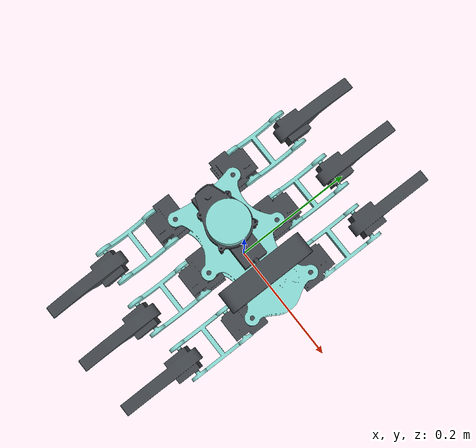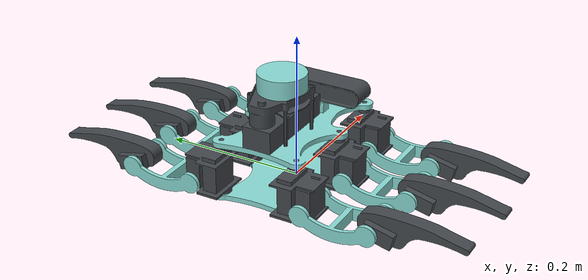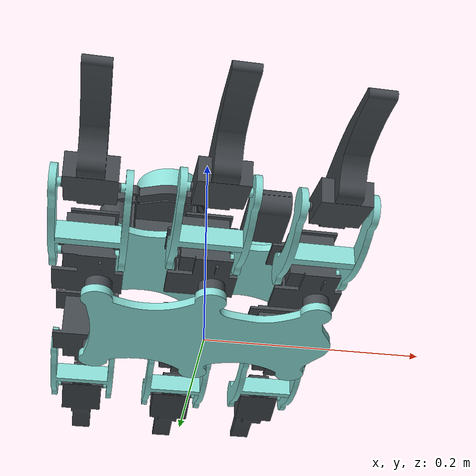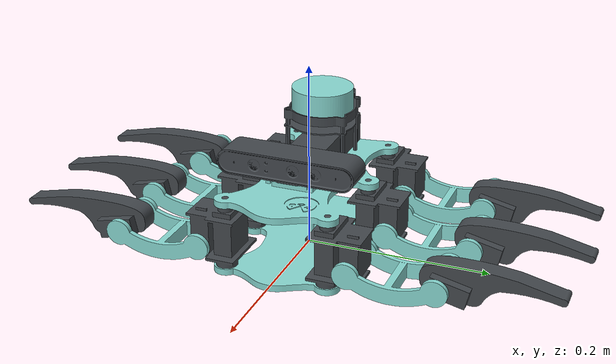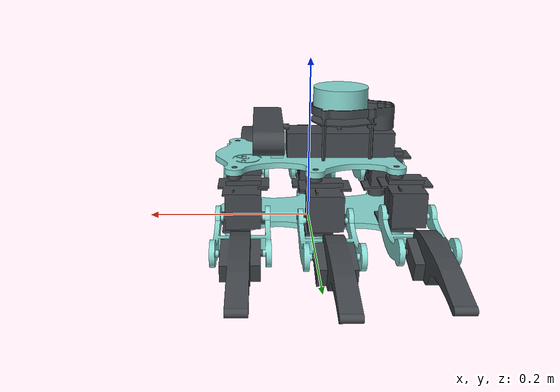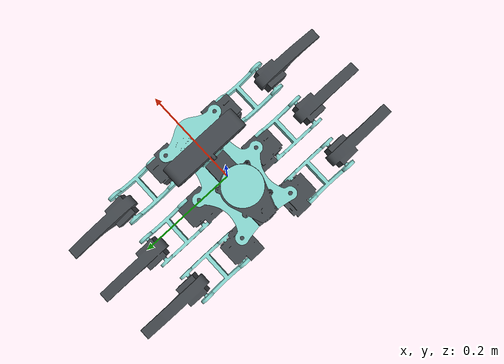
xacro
<?xml version="1.0"?>
<robot name="tiffany" xmlns:xacro="http://www.ros.org/wiki/xacro">

  <xacro:arg name="camera" default="true"/>
  <xacro:arg name="lidar" default="true"/>

  <xacro:property name="pkg"          value="hexapod_ws"/>
  <xacro:property name="effort"       value="10"/>
  <xacro:property name="velocity"     value="10"/>
  <xacro:property name="joint_lower"  value="-3.14159"/>
  <xacro:property name="joint_upper"  value="3.14159"/>

  <ros2_control name="tiffany_ros2_control" type="system">
    <hardware>
      <plugin>gz_ros2_control/GazeboSimSystem</plugin>
    </hardware>

    <joint name="coxa1">
      <command_interface name="position"/>
      <state_interface name="position"/>
      <state_interface name="velocity"/>
    </joint>
    <joint name="femur1">
      <command_interface name="position"/>
      <state_interface name="position"/>
      <state_interface name="velocity"/>
    </joint>
    <joint name="tibia1">
      <command_interface name="position"/>
      <state_interface name="position"/>
      <state_interface name="velocity"/>
    </joint>

    <joint name="coxa2">
      <command_interface name="position"/>
      <state_interface name="position"/>
      <state_interface name="velocity"/>
    </joint>
    <joint name="femur2">
      <command_interface name="position"/>
      <state_interface name="position"/>
      <state_interface name="velocity"/>
    </joint>
    <joint name="tibia2">
      <command_interface name="position"/>
      <state_interface name="position"/>
      <state_interface name="velocity"/>
    </joint>

    <joint name="coxa3">
      <command_interface name="position"/>
      <state_interface name="position"/>
      <state_interface name="velocity"/>
    </joint>
    <joint name="femur3">
      <command_interface name="position"/>
      <state_interface name="position"/>
      <state_interface name="velocity"/>
    </joint>
    <joint name="tibia3">
      <command_interface name="position"/>
      <state_interface name="position"/>
      <state_interface name="velocity"/>
    </joint>

    <joint name="coxa4">
      <command_interface name="position"/>
      <state_interface name="position"/>
      <state_interface name="velocity"/>
    </joint>
    <joint name="femur4">
      <command_interface name="position"/>
      <state_interface name="position"/>
      <state_interface name="velocity"/>
    </joint>
    <joint name="tibia4">
      <command_interface name="position"/>
      <state_interface name="position"/>
      <state_interface name="velocity"/>
    </joint>

    <joint name="coxa5">
      <command_interface name="position"/>
      <state_interface name="position"/>
      <state_interface name="velocity"/>
    </joint>
    <joint name="femur5">
      <command_interface name="position"/>
      <state_interface name="position"/>
      <state_interface name="velocity"/>
    </joint>
    <joint name="tibia5">
      <command_interface name="position"/>
      <state_interface name="position"/>
      <state_interface name="velocity"/>
    </joint>

    <joint name="coxa6">
      <command_interface name="position"/>
      <state_interface name="position"/>
      <state_interface name="velocity"/>
    </joint>
    <joint name="femur6">
      <command_interface name="position"/>
      <state_interface name="position"/>
      <state_interface name="velocity"/>
    </joint>
    <joint name="tibia6">
      <command_interface name="position"/>
      <state_interface name="position"/>
      <state_interface name="velocity"/>
    </joint>

  </ros2_control>

  <gazebo>
    <plugin filename="libgz_ros2_control-system.so" name="gz_ros2_control::GazeboSimROS2ControlPlugin">
      <parameters>$(find hexapod_ws)/config/parameters.yaml</parameters>
      <ros>
        <remapping>~/robot_description:=robot_description</remapping>
      </ros>
    </plugin>
  </gazebo>

  <gazebo>
    <plugin filename="gz-sim-odometry-publisher-system"
            name="gz::sim::systems::OdometryPublisher">
      <odom_frame>odom</odom_frame>
      <robot_base_frame>base_link</robot_base_frame>
      <odom_topic>/model/tiffany/odometry</odom_topic>
      <tf_topic>/model/tiffany/tf</tf_topic>
      <odom_publish_frequency>50</odom_publish_frequency>
      <dimensions>2</dimensions>
    </plugin>
  </gazebo>

  <link name="base_link">
    <inertial>
      <origin xyz="-0.00158727 0.000307973 0.0818293" rpy="0 0 0"/>
      <mass value="0.816237"/>
      <inertia ixx="0.00293857" ixy="5.79441e-06"  ixz="0.000191891"
               iyy="0.00475006" iyz="-8.13345e-06" izz="0.00349155"/>
    </inertial>

    <visual>
      <origin xyz="-0.00916237 0.000669937 -0.048" rpy="0 0 0"/>
      <geometry><mesh filename="package://${pkg}/description/meshes/lidar.stl"/></geometry>
      <material name="teal"><color rgba="0.537255 0.854902 0.827451 1"/></material>
    </visual>
    <collision>
      <origin xyz="-0.00916237 0.000669937 -0.048" rpy="0 0 0"/>
      <geometry><mesh filename="package://${pkg}/description/meshes/lidar.stl"/></geometry>
    </collision>

    <visual>
      <origin xyz="-0.00234127 -0.000443126 0.00690498" rpy="-0.00418892 0 0.00038394"/>
      <geometry><mesh filename="package://${pkg}/description/meshes/camera.stl"/></geometry>
      <material name="dark"><color rgba="0.262745 0.282353 0.301961 1"/></material>
    </visual>
    <collision>
      <origin xyz="-0.00234127 -0.000443126 0.00690498" rpy="-0.00418892 0 0.00038394"/>
      <geometry><mesh filename="package://${pkg}/description/meshes/camera.stl"/></geometry>
    </collision>

    <visual>
      <origin xyz="-0.00143743 0.000199567 -0.026" rpy="0 0 0"/>
      <geometry><mesh filename="package://${pkg}/description/meshes/corpo_center.stl"/></geometry>
      <material name="teal"/>
    </visual>

    <visual>
      <origin xyz="-0.00914751 -7.64622e-05 -0.00305943" rpy="0 0 0"/>
      <geometry><mesh filename="package://${pkg}/description/meshes/suportecamera.stl"/></geometry>
      <material name="teal"/>
    </visual>
    <collision>
      <origin xyz="-0.00914751 -7.64622e-05 -0.00305943" rpy="0 0 0"/>
      <geometry><mesh filename="package://${pkg}/description/meshes/suportecamera.stl"/></geometry>
    </collision>

    <visual>
      <origin xyz="-0.00916237 0.000669937 -0.028" rpy="0 0 0"/>
      <geometry><mesh filename="package://${pkg}/description/meshes/suportelidar.stl"/></geometry>
      <material name="dark"/>
    </visual>
    <collision>
      <origin xyz="-0.00916237 0.000669937 -0.028" rpy="0 0 0"/>
      <geometry><mesh filename="package://${pkg}/description/meshes/suportelidar.stl"/></geometry>
    </collision>

    <visual>
      <origin xyz="0.173258 0.000648486 0.007" rpy="0 0 0"/>
      <geometry><mesh filename="package://${pkg}/description/meshes/bateria.stl"/></geometry>
      <material name="dark"/>
    </visual>
    <collision>
      <origin xyz="0.173258 0.000648486 0.007" rpy="0 0 0"/>
      <geometry><mesh filename="package://${pkg}/description/meshes/bateria.stl"/></geometry>
    </collision>
  </link>

  <gazebo reference="base_link">
    <mu1>0.2</mu1>
    <mu2>0.2</mu2>
    <sensor name="imu" type="imu">
      <update_rate>100</update_rate>
      <topic>/imu</topic>
      <gz_frame_id>base_link</gz_frame_id>
      <imu>
        <angular_velocity>
          <x><noise type="gaussian"><mean>0.0</mean><stddev>0.001</stddev></noise></x>
          <y><noise type="gaussian"><mean>0.0</mean><stddev>0.001</stddev></noise></y>
          <z><noise type="gaussian"><mean>0.0</mean><stddev>0.001</stddev></noise></z>
        </angular_velocity>
        <linear_acceleration>
          <x><noise type="gaussian"><mean>0.0</mean><stddev>0.008</stddev></noise></x>
          <y><noise type="gaussian"><mean>0.0</mean><stddev>0.008</stddev></noise></y>
          <z><noise type="gaussian"><mean>0.0</mean><stddev>0.008</stddev></noise></z>
        </linear_acceleration>
      </imu>
      <always_on>true</always_on>
      <visualize>false</visualize>
    </sensor>
  </gazebo>

  <xacro:if value="$(arg lidar)">
    <link name="lidar">
      <inertial>
        <mass value="0.001"/>
        <inertia ixx="1e-6" ixy="0" ixz="0" iyy="1e-6" iyz="0" izz="1e-6"/>
      </inertial>
    </link>

    <joint name="lidar_joint" type="fixed">
      <parent link="base_link"/>
      <child  link="lidar"/>
      <origin xyz="-0.03674 0.000649 0.15325" rpy="0 0 0"/>
    </joint>

    <gazebo reference="lidar">
      <sensor name="lidar" type="gpu_lidar">
        <update_rate>15</update_rate>
        <topic>/scan</topic>
        <gz_frame_id>lidar</gz_frame_id>
        <lidar>
          <scan>
            <horizontal>
              <samples>720</samples>
              <resolution>1</resolution>
              <min_angle>-3.14159265</min_angle>
              <max_angle>3.14159265</max_angle>
            </horizontal>
            <vertical>
              <samples>1</samples>
              <resolution>1</resolution>
              <min_angle>0</min_angle>
              <max_angle>0</max_angle>
            </vertical>
          </scan>
          <range>
            <min>0.10</min>
            <max>12.0</max>
            <resolution>0.01</resolution>
          </range>
          <noise>
            <type>gaussian</type>
            <mean>0.0</mean>
            <stddev>0.004</stddev>
          </noise>
        </lidar>
        <always_on>true</always_on>
        <visualize>true</visualize>
      </sensor>
    </gazebo>
  </xacro:if>

  <xacro:if value="$(arg camera)">
    <link name="camera">
      <inertial>
        <mass value="0.001"/>
        <inertia ixx="1e-6" ixy="0" ixz="0" iyy="1e-6" iyz="0" izz="1e-6"/>
      </inertial>
    </link>

    <joint name="camera_joint" type="fixed">
      <parent link="base_link"/>
      <child  link="camera"/>
      <origin xyz="0.059842 -0.000288 0.11141" rpy="-0.00418892 0 0.00038394"/>
    </joint>

    <gazebo reference="camera">
      <sensor name="camera" type="rgbd_camera">
        <update_rate>15</update_rate>
        <topic>camera</topic>
        <gz_frame_id>camera</gz_frame_id>
        <camera>
          <horizontal_fov>1.3962634</horizontal_fov>
          <image>
            <width>320</width>
            <height>240</height>
            <format>R8G8B8</format>
          </image>
          <clip>
            <near>0.02</near>
            <far>50</far>
          </clip>
          <depth_camera>
            <clip>
              <near>0.1</near>
              <far>10.0</far>
            </clip>
          </depth_camera>
          <noise>
            <type>gaussian</type>
            <mean>0.0</mean>
            <stddev>0.0025</stddev>
          </noise>
        </camera>
        <always_on>true</always_on>
        <visualize>false</visualize>
      </sensor>
    </gazebo>
  </xacro:if>

  <xacro:macro name="leg" params="num parent cx cy cz c_rpy left femur_rpy">

    <link name="coxa_${num}">
      <inertial>
        <xacro:if value="${left}">
          <origin xyz="-0.00925616 0.0105337 -0.0414798" rpy="0 0 0"/>
          <inertia ixx="5.39674e-05" ixy="2.7171e-08"   ixz="1.52845e-06"
                   iyy="4.85407e-05" iyz="2.07568e-07"  izz="4.06893e-05"/>
        </xacro:if>
        <xacro:unless value="${left}">
          <origin xyz="0.00925616 0.0105337 -0.0414798" rpy="0 0 0"/>
          <inertia ixx="5.39674e-05" ixy="-2.7171e-08"  ixz="-1.52845e-06"
                   iyy="4.85407e-05" iyz="2.07568e-07"  izz="4.06893e-05"/>
        </xacro:unless>
        <mass value="0.114719"/>
      </inertial>
      <xacro:if value="${left}">
        <visual>
          <origin xyz="0.0958607 -0.104994 -0.1085" rpy="0 0 0"/>
          <geometry><mesh filename="package://${pkg}/description/meshes/coxa_left.stl"/></geometry>
          <material name="dark"/>
        </visual>
        <collision>
          <origin xyz="0.0958607 -0.104994 -0.1085" rpy="0 0 0"/>
          <geometry><mesh filename="package://${pkg}/description/meshes/coxa_left.stl"/></geometry>
        </collision>
      </xacro:if>
      <xacro:unless value="${left}">
        <visual>
          <origin xyz="-0.0958607 -0.104994 -0.1085" rpy="0 0 3.14159"/>
          <geometry><mesh filename="package://${pkg}/description/meshes/coxa_right.stl"/></geometry>
          <material name="dark"/>
        </visual>
        <collision>
          <origin xyz="-0.0958607 -0.104994 -0.1085" rpy="0 0 3.14159"/>
          <geometry><mesh filename="package://${pkg}/description/meshes/coxa_right.stl"/></geometry>
        </collision>
      </xacro:unless>
    </link>

    <joint name="coxa${num}" type="revolute">
      <origin xyz="${cx} ${cy} ${cz}" rpy="${c_rpy}"/>
      <parent link="${parent}"/>
      <child  link="coxa_${num}"/>
      <axis xyz="0 0 1"/>
      <limit effort="${effort}" velocity="${velocity}" lower="${joint_lower}" upper="${joint_upper}"/>
    </joint>

    <gazebo reference="coxa_${num}">
      <mu1>0.6</mu1><mu2>0.6</mu2>
    </gazebo>

    <link name="femur_${num}">
      <inertial>
        <xacro:if value="${left}">
          <origin xyz="-0.00643845 0.0446229 0.0220001" rpy="0 0 0"/>
          <inertia ixx="6.83684e-05" ixy="-9.8624e-08" ixz="-3.156e-09"
                   iyy="2.98626e-05" iyz="3.769e-09"   izz="4.36701e-05"/>
        </xacro:if>
        <xacro:unless value="${left}">
          <origin xyz="-0.00643859 0.0446229 -0.0220012" rpy="0 0 0"/>
          <inertia ixx="6.83682e-05" ixy="-9.8789e-08" ixz="3.106e-09"
                   iyy="2.98625e-05" iyz="-4.509e-09"  izz="4.36704e-05"/>
        </xacro:unless>
        <mass value="0.0406019"/>
      </inertial>
      <xacro:if value="${left}">
        <visual>
          <origin xyz="-0.0563378 -0.180581 -0.0838551" rpy="1.57104 1.57069 1.5708"/>
          <geometry><mesh filename="package://${pkg}/description/meshes/femur_left.stl"/></geometry>
          <material name="teal"/>
        </visual>
        <collision>
          <origin xyz="-0.0563378 -0.180581 -0.0838551" rpy="1.57104 1.57069 1.5708"/>
          <geometry><mesh filename="package://${pkg}/description/meshes/femur_left.stl"/></geometry>
        </collision>
      </xacro:if>
      <xacro:unless value="${left}">
        <visual>
          <origin xyz="-0.0563378 -0.180581 0.0838551" rpy="1.57055 -1.57069 1.5708"/>
          <geometry><mesh filename="package://${pkg}/description/meshes/femur_right.stl"/></geometry>
          <material name="teal"/>
        </visual>
        <collision>
          <origin xyz="-0.0563378 -0.180581 0.0838551" rpy="1.57055 -1.57069 1.5708"/>
          <geometry><mesh filename="package://${pkg}/description/meshes/femur_right.stl"/></geometry>
        </collision>
      </xacro:unless>
    </link>

    <xacro:if value="${left}">
      <joint name="femur${num}" type="revolute">
        <origin xyz="0.0120255 0.0256037 -0.0522" rpy="${femur_rpy}"/>
        <parent link="coxa_${num}"/>
        <child  link="femur_${num}"/>
        <axis xyz="0 0 1"/>
        <limit effort="${effort}" velocity="${velocity}" lower="${joint_lower}" upper="${joint_upper}"/>
      </joint>
    </xacro:if>
    <xacro:unless value="${left}">
      <joint name="femur${num}" type="revolute">
        <origin xyz="-0.0120255 0.0256037 -0.0522" rpy="${femur_rpy}"/>
        <parent link="coxa_${num}"/>
        <child  link="femur_${num}"/>
        <axis xyz="0 0 1"/>
        <limit effort="${effort}" velocity="${velocity}" lower="${joint_lower}" upper="${joint_upper}"/>
      </joint>
    </xacro:unless>

    <gazebo reference="femur_${num}">
      <mu1>0.6</mu1><mu2>0.6</mu2>
    </gazebo>

    <link name="tibia_${num}">
      <inertial>
        <xacro:if value="${left}">
          <origin xyz="0.00462765 0.0291382 0.0219975" rpy="0 0 0"/>
          <inertia ixx="0.00011091"  ixy="-8.06656e-06" ixz="1.813e-09"
                   iyy="1.63167e-05" iyz="7.373e-09"    izz="0.00011223"/>
        </xacro:if>
        <xacro:unless value="${left}">
          <origin xyz="0.00462869 0.0291366 -0.0219976" rpy="0 0 0"/>
          <inertia ixx="0.000110896" ixy="-8.06647e-06" ixz="-2.004e-09"
                   iyy="1.63119e-05" iyz="-8.214e-09"   izz="0.000112212"/>
        </xacro:unless>
        <mass value="0.0995945"/>
      </inertial>
      <xacro:if value="${left}">
        <visual>
          <origin xyz="-0.0713466 -0.317596 -0.0837714" rpy="-1.52343 1.57063 -1.5708"/>
          <geometry><mesh filename="package://${pkg}/description/meshes/tibia_left.stl"/></geometry>
          <material name="dark"/>
        </visual>
        <collision>
          <origin xyz="-0.0713466 -0.317596 -0.0837714" rpy="-1.52343 1.57063 -1.5708"/>
          <geometry><mesh filename="package://${pkg}/description/meshes/tibia_left.stl"/></geometry>
        </collision>
      </xacro:if>
      <xacro:unless value="${left}">
        <visual>
          <origin xyz="-0.0713466 -0.317596 0.0837714" rpy="-1.61816 -1.57063 -1.5708"/>
          <geometry><mesh filename="package://${pkg}/description/meshes/tibia_right.stl"/></geometry>
          <material name="dark"/>
        </visual>
        <collision>
          <origin xyz="-0.0713466 -0.317596 0.0837714" rpy="-1.61816 -1.57063 -1.5708"/>
          <geometry><mesh filename="package://${pkg}/description/meshes/tibia_right.stl"/></geometry>
        </collision>
      </xacro:unless>
    </link>

    <joint name="tibia${num}" type="revolute">
      <origin xyz="-4.22005e-05 0.09 0" rpy="0 0 0"/>
      <parent link="femur_${num}"/>
      <child  link="tibia_${num}"/>
      <axis xyz="0 0 1"/>
      <limit effort="${effort}" velocity="${velocity}" lower="${joint_lower}" upper="${joint_upper}"/>
    </joint>

    <gazebo reference="tibia_${num}">
      <mu1>0.8</mu1><mu2>0.8</mu2>
    </gazebo>

  </xacro:macro>

  <xacro:leg num="1" parent="base_link"
    cx="0.090389"   cy="0.0557355"  cz="0.0825" c_rpy="0 0 0"
    left="true"  femur_rpy="-0.000110389 -1.5708 0"/>

  <xacro:leg num="2" parent="base_link"
    cx="-0.00260145" cy="0.065288"  cz="0.0825" c_rpy="0 0 0"
    left="true"  femur_rpy="-0.000110389 -1.5708 0"/>

  <xacro:leg num="3" parent="base_link"
    cx="-0.0975281"  cy="0.0553256" cz="0.0825" c_rpy="0 0 0"
    left="true"  femur_rpy="-0.000110389 -1.5708 0"/>

  <xacro:leg num="4" parent="base_link"
    cx="0.090332"    cy="-0.055261"  cz="0.0825" c_rpy="0 0 3.14159"
    left="false" femur_rpy="0.000110389 -1.5708 0"/>

  <xacro:leg num="5" parent="base_link"
    cx="-0.00265937" cy="-0.064712"  cz="0.0825" c_rpy="0 0 3.14159"
    left="false" femur_rpy="0.000110389 -1.5708 0"/>

  <xacro:leg num="6" parent="base_link"
    cx="-0.0975677"  cy="-0.0546697" cz="0.0825" c_rpy="0 0 3.14159"
    left="false" femur_rpy="0.000110389 -1.5708 0"/>

</robot>
